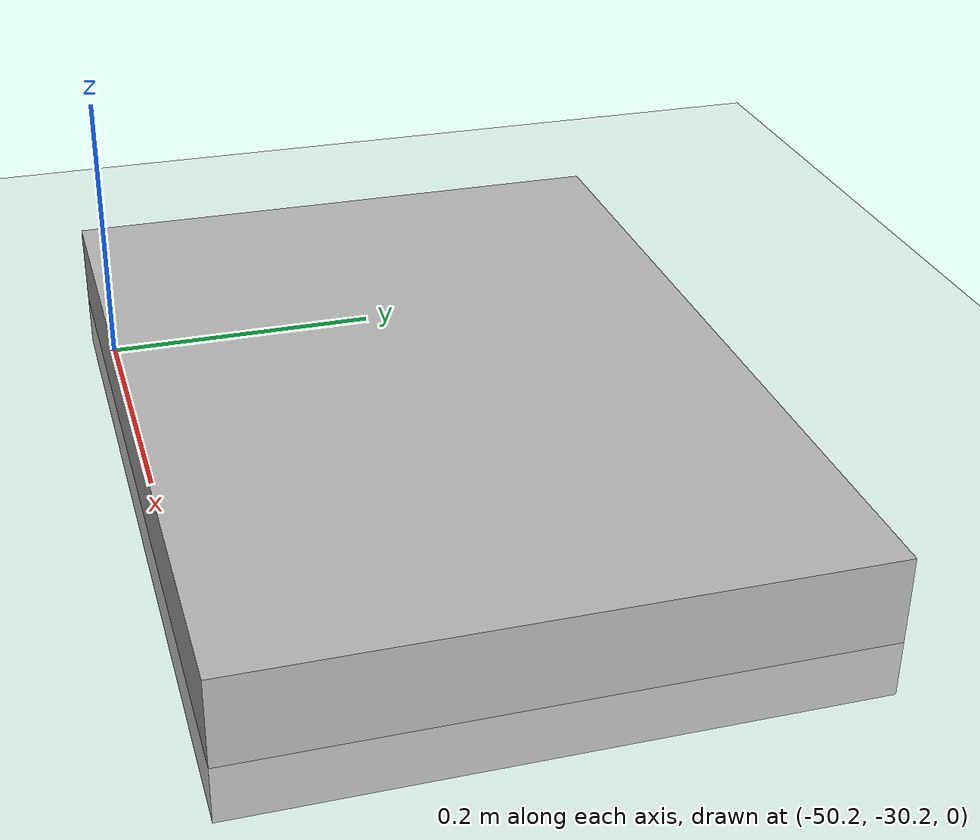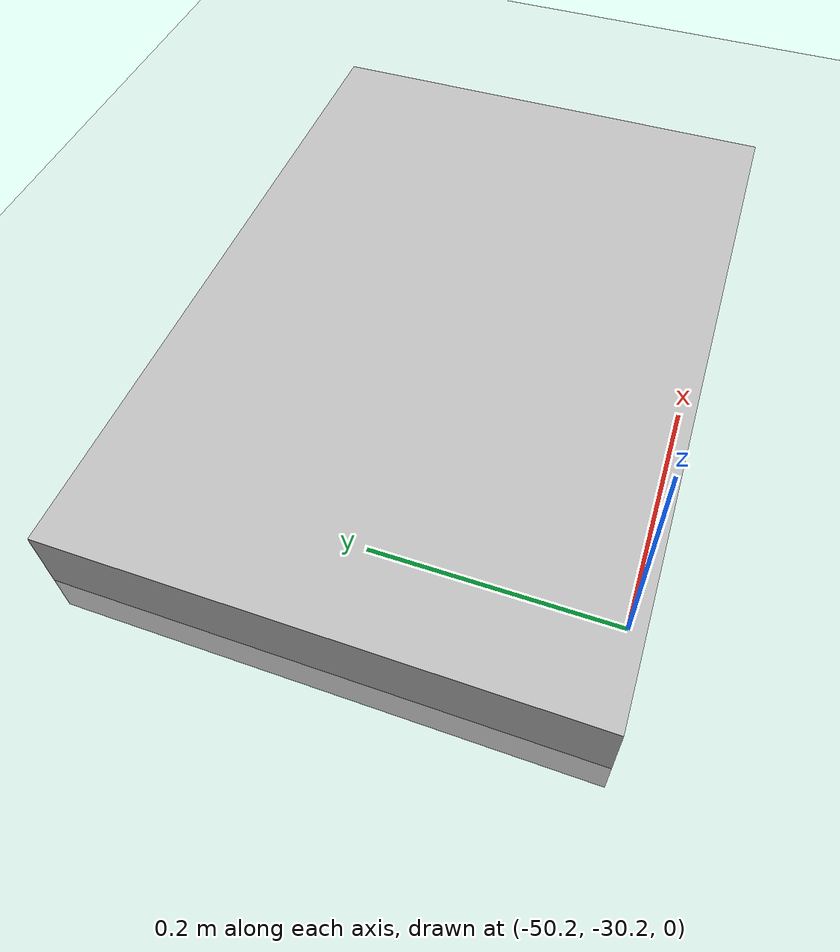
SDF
<?xml version="1.0" ?>
<sdf version="1.5">
  <world name="default">
    <!-- A global light source -->
    <include>
      <uri>model://sun</uri>
    </include>
    <!-- A ground plane -->
    <include>
      <uri>model://landing_zone</uri>
    </include>
    <include>
      <pose>-50 -30 0.01 0 0 0</pose>
      <uri>model://landing_target</uri>
    </include>
    <physics name='default_physics' default='0' type='ode'>
      <gravity>0 0 -9.8066</gravity>
      <ode>
        <solver>
          <type>quick</type>
          <iters>4</iters>
          <sor>1.3</sor>
          <use_dynamic_moi_rescaling>0</use_dynamic_moi_rescaling>
        </solver>
        <constraints>
          <cfm>0.05</cfm>
          <erp>0.2</erp>
          <contact_max_correcting_vel>100</contact_max_correcting_vel>
          <contact_surface_layer>0.001</contact_surface_layer>
        </constraints>
      </ode>
      <max_step_size>0.00125</max_step_size>
      <real_time_factor>1</real_time_factor>
      <real_time_update_rate>800</real_time_update_rate>
      <magnetic_field>6e-06 2.3e-05 -4.2e-05</magnetic_field>
    </physics>
  </world>
</sdf>

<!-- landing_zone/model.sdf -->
<sdf version="1.5">
  <model name="landing_zone">
    <static>true</static>
    <link name="link">
      <collision name="collision">
        <geometry>
          <plane>
            <normal>0 0 1</normal>
            <size>366.412 216.107</size>
          </plane>
        </geometry>
        <surface>
          <contact>
             <collide_bitmask>0xffff</collide_bitmask>
          </contact>
          <friction>
            <ode>
              <mu>100</mu>
              <mu2>50</mu2>
            </ode>
          </friction>
        </surface>
      </collision>
      <visual name="visual">
        <cast_shadows>false</cast_shadows>
        <geometry>
          <plane>
            <normal>0 0 1</normal>
            <size>366.412 216.107</size>
          </plane>
        </geometry>
        <material>
          <script>
            <uri>model://landing_zone/materials/scripts</uri>
            <uri>model://landing_zone/materials/textures</uri>
            <name>vrc/landing</name>
          </script>
        </material>
      </visual>
    </link>
  </model>
</sdf>

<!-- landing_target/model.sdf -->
<sdf version="1.5">
  <model name="landing_target">
    <static>true</static>
    <link name="link">
      <collision name="collision">
        <geometry>
          <box>
            <size>0.42 0.584 .1</size>
          </box>
        </geometry>
      </collision>
      <visual name="visual">
        <cast_shadows>false</cast_shadows>
        <geometry>
          <box>
            <size>0.594 0.42 .1</size>
          </box>
        </geometry>
        <material>
          <script>
            <uri>model://landing_target/materials/scripts</uri>
            <uri>model://landing_target/materials/textures</uri>
            <name>vrc/target</name>
          </script>
        </material>
      </visual>
    </link>
  </model>
</sdf>
